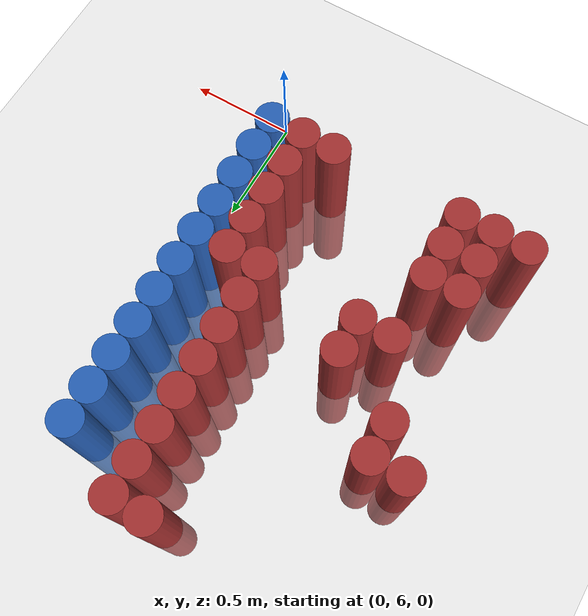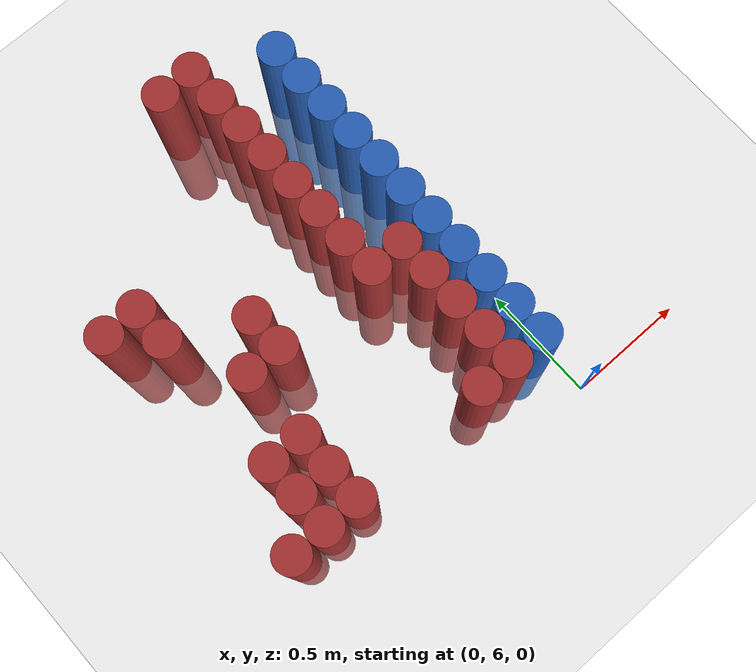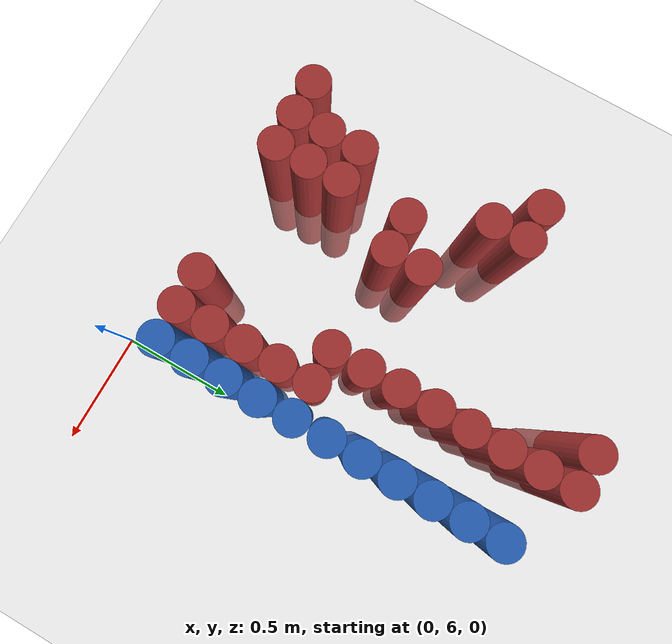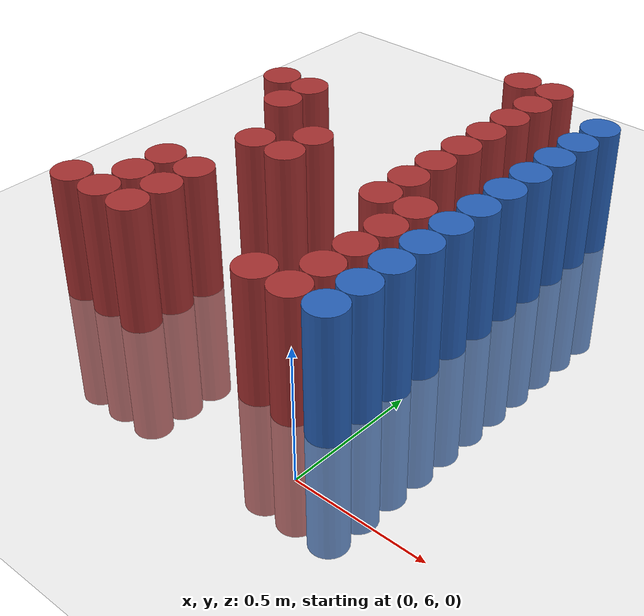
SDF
<sdf version="1.6">
 <world name="default">
  <model name="ground_plane">
   <static>1</static>
   <link name="link">
    <collision name="collision">
     <geometry><plane><normal>0 0 1</normal><size>100 100</size></plane></geometry>
     <surface><friction><ode><mu>100</mu><mu2>50</mu2></ode></friction></surface>
    </collision>
    <visual name="visual">
     <cast_shadows>0</cast_shadows>
     <geometry><plane><normal>0 0 1</normal><size>100 100</size></plane></geometry>
     <material>
      <script><uri>file://media/materials/scripts/gazebo.material</uri><name>Gazebo/Grey</name></script>
     </material>
    </visual>
   </link>
  </model>
  <model name="unit_cylinder_216">
   <static>1</static>
   <pose>-1.275000 6.225000 0.000000 0.000000 0.000000 0.000000</pose>
   <link name="link">
    <inertial>
     <mass>1</mass>
     <inertia><ixx>0.145833</ixx><ixy>0</ixy><ixz>0</ixz><iyy>0.145833</iyy><iyz>0</iyz><izz>0.125</izz></inertia>
    </inertial>
    <collision name="collision">
     <geometry><cylinder><radius>0.075000</radius><length>1</length></cylinder></geometry>
    </collision>
    <visual name="visual">
     <geometry><cylinder><radius>0.075000</radius><length>1</length></cylinder></geometry>
     <material>
      <ambient>0.648000 0.192000 0.192000 1</ambient>
      <diffuse>0.648000 0.192000 0.192000 1</diffuse>
     </material>
     <material>
      <script><name>Gazebo/Grey</name><uri>file://media/materials/scripts/gazebo.material</uri></script>
     </material>
    </visual>
    <sensor name="sensor_contact" type="contact"><contact><collision>collision</collision></contact></sensor>
   </link>
   <plugin filename="gz-sim-touchplugin-system" name="gz::sim::systems::TouchPlugin">
    <target>robot</target>
    <namespace>robot</namespace>
    <time>0.001</time>
    <enabled>true</enabled>
   </plugin>
  </model>
  <model name="unit_cylinder_217">
   <static>1</static>
   <pose>-1.275000 7.275000 0.000000 0.000000 0.000000 0.000000</pose>
   <link name="link">
    <inertial>
     <mass>1</mass>
     <inertia><ixx>0.145833</ixx><ixy>0</ixy><ixz>0</ixz><iyy>0.145833</iyy><iyz>0</iyz><izz>0.125</izz></inertia>
    </inertial>
    <collision name="collision">
     <geometry><cylinder><radius>0.075000</radius><length>1</length></cylinder></geometry>
    </collision>
    <visual name="visual">
     <geometry><cylinder><radius>0.075000</radius><length>1</length></cylinder></geometry>
     <material>
      <ambient>0.648000 0.192000 0.192000 1</ambient>
      <diffuse>0.648000 0.192000 0.192000 1</diffuse>
     </material>
     <material>
      <script><name>Gazebo/Grey</name><uri>file://media/materials/scripts/gazebo.material</uri></script>
     </material>
    </visual>
    <sensor name="sensor_contact" type="contact"><contact><collision>collision</collision></contact></sensor>
   </link>
   <plugin filename="gz-sim-touchplugin-system" name="gz::sim::systems::TouchPlugin">
    <target>robot</target>
    <namespace>robot</namespace>
    <time>0.001</time>
    <enabled>true</enabled>
   </plugin>
  </model>
  <model name="unit_cylinder_221">
   <static>1</static>
   <pose>-1.125000 6.225000 0.000000 0.000000 0.000000 0.000000</pose>
   <link name="link">
    <inertial>
     <mass>1</mass>
     <inertia><ixx>0.145833</ixx><ixy>0</ixy><ixz>0</ixz><iyy>0.145833</iyy><iyz>0</iyz><izz>0.125</izz></inertia>
    </inertial>
    <collision name="collision">
     <geometry><cylinder><radius>0.075000</radius><length>1</length></cylinder></geometry>
    </collision>
    <visual name="visual">
     <geometry><cylinder><radius>0.075000</radius><length>1</length></cylinder></geometry>
     <material>
      <ambient>0.648000 0.192000 0.192000 1</ambient>
      <diffuse>0.648000 0.192000 0.192000 1</diffuse>
     </material>
     <material>
      <script><name>Gazebo/Grey</name><uri>file://media/materials/scripts/gazebo.material</uri></script>
     </material>
    </visual>
    <sensor name="sensor_contact" type="contact"><contact><collision>collision</collision></contact></sensor>
   </link>
   <plugin filename="gz-sim-touchplugin-system" name="gz::sim::systems::TouchPlugin">
    <target>robot</target>
    <namespace>robot</namespace>
    <time>0.001</time>
    <enabled>true</enabled>
   </plugin>
  </model>
  <model name="unit_cylinder_222">
   <static>1</static>
   <pose>-1.125000 6.375000 0.000000 0.000000 0.000000 0.000000</pose>
   <link name="link">
    <inertial>
     <mass>1</mass>
     <inertia><ixx>0.145833</ixx><ixy>0</ixy><ixz>0</ixz><iyy>0.145833</iyy><iyz>0</iyz><izz>0.125</izz></inertia>
    </inertial>
    <collision name="collision">
     <geometry><cylinder><radius>0.075000</radius><length>1</length></cylinder></geometry>
    </collision>
    <visual name="visual">
     <geometry><cylinder><radius>0.075000</radius><length>1</length></cylinder></geometry>
     <material>
      <ambient>0.648000 0.192000 0.192000 1</ambient>
      <diffuse>0.648000 0.192000 0.192000 1</diffuse>
     </material>
     <material>
      <script><name>Gazebo/Grey</name><uri>file://media/materials/scripts/gazebo.material</uri></script>
     </material>
    </visual>
    <sensor name="sensor_contact" type="contact"><contact><collision>collision</collision></contact></sensor>
   </link>
   <plugin filename="gz-sim-touchplugin-system" name="gz::sim::systems::TouchPlugin">
    <target>robot</target>
    <namespace>robot</namespace>
    <time>0.001</time>
    <enabled>true</enabled>
   </plugin>
  </model>
  <model name="unit_cylinder_223">
   <static>1</static>
   <pose>-1.125000 6.525000 0.000000 0.000000 0.000000 0.000000</pose>
   <link name="link">
    <inertial>
     <mass>1</mass>
     <inertia><ixx>0.145833</ixx><ixy>0</ixy><ixz>0</ixz><iyy>0.145833</iyy><iyz>0</iyz><izz>0.125</izz></inertia>
    </inertial>
    <collision name="collision">
     <geometry><cylinder><radius>0.075000</radius><length>1</length></cylinder></geometry>
    </collision>
    <visual name="visual">
     <geometry><cylinder><radius>0.075000</radius><length>1</length></cylinder></geometry>
     <material>
      <ambient>0.648000 0.192000 0.192000 1</ambient>
      <diffuse>0.648000 0.192000 0.192000 1</diffuse>
     </material>
     <material>
      <script><name>Gazebo/Grey</name><uri>file://media/materials/scripts/gazebo.material</uri></script>
     </material>
    </visual>
    <sensor name="sensor_contact" type="contact"><contact><collision>collision</collision></contact></sensor>
   </link>
   <plugin filename="gz-sim-touchplugin-system" name="gz::sim::systems::TouchPlugin">
    <target>robot</target>
    <namespace>robot</namespace>
    <time>0.001</time>
    <enabled>true</enabled>
   </plugin>
  </model>
  <model name="unit_cylinder_224">
   <static>1</static>
   <pose>-1.125000 7.125000 0.000000 0.000000 0.000000 0.000000</pose>
   <link name="link">
    <inertial>
     <mass>1</mass>
     <inertia><ixx>0.145833</ixx><ixy>0</ixy><ixz>0</ixz><iyy>0.145833</iyy><iyz>0</iyz><izz>0.125</izz></inertia>
    </inertial>
    <collision name="collision">
     <geometry><cylinder><radius>0.075000</radius><length>1</length></cylinder></geometry>
    </collision>
    <visual name="visual">
     <geometry><cylinder><radius>0.075000</radius><length>1</length></cylinder></geometry>
     <material>
      <ambient>0.648000 0.192000 0.192000 1</ambient>
      <diffuse>0.648000 0.192000 0.192000 1</diffuse>
     </material>
     <material>
      <script><name>Gazebo/Grey</name><uri>file://media/materials/scripts/gazebo.material</uri></script>
     </material>
    </visual>
    <sensor name="sensor_contact" type="contact"><contact><collision>collision</collision></contact></sensor>
   </link>
   <plugin filename="gz-sim-touchplugin-system" name="gz::sim::systems::TouchPlugin">
    <target>robot</target>
    <namespace>robot</namespace>
    <time>0.001</time>
    <enabled>true</enabled>
   </plugin>
  </model>
  <model name="unit_cylinder_225">
   <static>1</static>
   <pose>-1.125000 7.275000 0.000000 0.000000 0.000000 0.000000</pose>
   <link name="link">
    <inertial>
     <mass>1</mass>
     <inertia><ixx>0.145833</ixx><ixy>0</ixy><ixz>0</ixz><iyy>0.145833</iyy><iyz>0</iyz><izz>0.125</izz></inertia>
    </inertial>
    <collision name="collision">
     <geometry><cylinder><radius>0.075000</radius><length>1</length></cylinder></geometry>
    </collision>
    <visual name="visual">
     <geometry><cylinder><radius>0.075000</radius><length>1</length></cylinder></geometry>
     <material>
      <ambient>0.648000 0.192000 0.192000 1</ambient>
      <diffuse>0.648000 0.192000 0.192000 1</diffuse>
     </material>
     <material>
      <script><name>Gazebo/Grey</name><uri>file://media/materials/scripts/gazebo.material</uri></script>
     </material>
    </visual>
    <sensor name="sensor_contact" type="contact"><contact><collision>collision</collision></contact></sensor>
   </link>
   <plugin filename="gz-sim-touchplugin-system" name="gz::sim::systems::TouchPlugin">
    <target>robot</target>
    <namespace>robot</namespace>
    <time>0.001</time>
    <enabled>true</enabled>
   </plugin>
  </model>
  <model name="unit_cylinder_229">
   <static>1</static>
   <pose>-0.975000 6.225000 0.000000 0.000000 0.000000 0.000000</pose>
   <link name="link">
    <inertial>
     <mass>1</mass>
     <inertia><ixx>0.145833</ixx><ixy>0</ixy><ixz>0</ixz><iyy>0.145833</iyy><iyz>0</iyz><izz>0.125</izz></inertia>
    </inertial>
    <collision name="collision">
     <geometry><cylinder><radius>0.075000</radius><length>1</length></cylinder></geometry>
    </collision>
    <visual name="visual">
     <geometry><cylinder><radius>0.075000</radius><length>1</length></cylinder></geometry>
     <material>
      <ambient>0.648000 0.192000 0.192000 1</ambient>
      <diffuse>0.648000 0.192000 0.192000 1</diffuse>
     </material>
     <material>
      <script><name>Gazebo/Grey</name><uri>file://media/materials/scripts/gazebo.material</uri></script>
     </material>
    </visual>
    <sensor name="sensor_contact" type="contact"><contact><collision>collision</collision></contact></sensor>
   </link>
   <plugin filename="gz-sim-touchplugin-system" name="gz::sim::systems::TouchPlugin">
    <target>robot</target>
    <namespace>robot</namespace>
    <time>0.001</time>
    <enabled>true</enabled>
   </plugin>
  </model>
  <model name="unit_cylinder_230">
   <static>1</static>
   <pose>-0.975000 6.375000 0.000000 0.000000 0.000000 0.000000</pose>
   <link name="link">
    <inertial>
     <mass>1</mass>
     <inertia><ixx>0.145833</ixx><ixy>0</ixy><ixz>0</ixz><iyy>0.145833</iyy><iyz>0</iyz><izz>0.125</izz></inertia>
    </inertial>
    <collision name="collision">
     <geometry><cylinder><radius>0.075000</radius><length>1</length></cylinder></geometry>
    </collision>
    <visual name="visual">
     <geometry><cylinder><radius>0.075000</radius><length>1</length></cylinder></geometry>
     <material>
      <ambient>0.648000 0.192000 0.192000 1</ambient>
      <diffuse>0.648000 0.192000 0.192000 1</diffuse>
     </material>
     <material>
      <script><name>Gazebo/Grey</name><uri>file://media/materials/scripts/gazebo.material</uri></script>
     </material>
    </visual>
    <sensor name="sensor_contact" type="contact"><contact><collision>collision</collision></contact></sensor>
   </link>
   <plugin filename="gz-sim-touchplugin-system" name="gz::sim::systems::TouchPlugin">
    <target>robot</target>
    <namespace>robot</namespace>
    <time>0.001</time>
    <enabled>true</enabled>
   </plugin>
  </model>
  <model name="unit_cylinder_231">
   <static>1</static>
   <pose>-0.975000 6.525000 0.000000 0.000000 0.000000 0.000000</pose>
   <link name="link">
    <inertial>
     <mass>1</mass>
     <inertia><ixx>0.145833</ixx><ixy>0</ixy><ixz>0</ixz><iyy>0.145833</iyy><iyz>0</iyz><izz>0.125</izz></inertia>
    </inertial>
    <collision name="collision">
     <geometry><cylinder><radius>0.075000</radius><length>1</length></cylinder></geometry>
    </collision>
    <visual name="visual">
     <geometry><cylinder><radius>0.075000</radius><length>1</length></cylinder></geometry>
     <material>
      <ambient>0.648000 0.192000 0.192000 1</ambient>
      <diffuse>0.648000 0.192000 0.192000 1</diffuse>
     </material>
     <material>
      <script><name>Gazebo/Grey</name><uri>file://media/materials/scripts/gazebo.material</uri></script>
     </material>
    </visual>
    <sensor name="sensor_contact" type="contact"><contact><collision>collision</collision></contact></sensor>
   </link>
   <plugin filename="gz-sim-touchplugin-system" name="gz::sim::systems::TouchPlugin">
    <target>robot</target>
    <namespace>robot</namespace>
    <time>0.001</time>
    <enabled>true</enabled>
   </plugin>
  </model>
  <model name="unit_cylinder_232">
   <static>1</static>
   <pose>-0.975000 6.825000 0.000000 0.000000 0.000000 0.000000</pose>
   <link name="link">
    <inertial>
     <mass>1</mass>
     <inertia><ixx>0.145833</ixx><ixy>0</ixy><ixz>0</ixz><iyy>0.145833</iyy><iyz>0</iyz><izz>0.125</izz></inertia>
    </inertial>
    <collision name="collision">
     <geometry><cylinder><radius>0.075000</radius><length>1</length></cylinder></geometry>
    </collision>
    <visual name="visual">
     <geometry><cylinder><radius>0.075000</radius><length>1</length></cylinder></geometry>
     <material>
      <ambient>0.648000 0.192000 0.192000 1</ambient>
      <diffuse>0.648000 0.192000 0.192000 1</diffuse>
     </material>
     <material>
      <script><name>Gazebo/Grey</name><uri>file://media/materials/scripts/gazebo.material</uri></script>
     </material>
    </visual>
    <sensor name="sensor_contact" type="contact"><contact><collision>collision</collision></contact></sensor>
   </link>
   <plugin filename="gz-sim-touchplugin-system" name="gz::sim::systems::TouchPlugin">
    <target>robot</target>
    <namespace>robot</namespace>
    <time>0.001</time>
    <enabled>true</enabled>
   </plugin>
  </model>
  <model name="unit_cylinder_236">
   <static>1</static>
   <pose>-0.825000 6.825000 0.000000 0.000000 0.000000 0.000000</pose>
   <link name="link">
    <inertial>
     <mass>1</mass>
     <inertia><ixx>0.145833</ixx><ixy>0</ixy><ixz>0</ixz><iyy>0.145833</iyy><iyz>0</iyz><izz>0.125</izz></inertia>
    </inertial>
    <collision name="collision">
     <geometry><cylinder><radius>0.075000</radius><length>1</length></cylinder></geometry>
    </collision>
    <visual name="visual">
     <geometry><cylinder><radius>0.075000</radius><length>1</length></cylinder></geometry>
     <material>
      <ambient>0.648000 0.192000 0.192000 1</ambient>
      <diffuse>0.648000 0.192000 0.192000 1</diffuse>
     </material>
     <material>
      <script><name>Gazebo/Grey</name><uri>file://media/materials/scripts/gazebo.material</uri></script>
     </material>
    </visual>
    <sensor name="sensor_contact" type="contact"><contact><collision>collision</collision></contact></sensor>
   </link>
   <plugin filename="gz-sim-touchplugin-system" name="gz::sim::systems::TouchPlugin">
    <target>robot</target>
    <namespace>robot</namespace>
    <time>0.001</time>
    <enabled>true</enabled>
   </plugin>
  </model>
  <model name="unit_cylinder_237">
   <static>1</static>
   <pose>-0.825000 6.975000 0.000000 0.000000 0.000000 0.000000</pose>
   <link name="link">
    <inertial>
     <mass>1</mass>
     <inertia><ixx>0.145833</ixx><ixy>0</ixy><ixz>0</ixz><iyy>0.145833</iyy><iyz>0</iyz><izz>0.125</izz></inertia>
    </inertial>
    <collision name="collision">
     <geometry><cylinder><radius>0.075000</radius><length>1</length></cylinder></geometry>
    </collision>
    <visual name="visual">
     <geometry><cylinder><radius>0.075000</radius><length>1</length></cylinder></geometry>
     <material>
      <ambient>0.648000 0.192000 0.192000 1</ambient>
      <diffuse>0.648000 0.192000 0.192000 1</diffuse>
     </material>
     <material>
      <script><name>Gazebo/Grey</name><uri>file://media/materials/scripts/gazebo.material</uri></script>
     </material>
    </visual>
    <sensor name="sensor_contact" type="contact"><contact><collision>collision</collision></contact></sensor>
   </link>
   <plugin filename="gz-sim-touchplugin-system" name="gz::sim::systems::TouchPlugin">
    <target>robot</target>
    <namespace>robot</namespace>
    <time>0.001</time>
    <enabled>true</enabled>
   </plugin>
  </model>
  <model name="unit_cylinder_250">
   <static>1</static>
   <pose>-0.525000 7.875000 0.000000 0.000000 0.000000 0.000000</pose>
   <link name="link">
    <inertial>
     <mass>1</mass>
     <inertia><ixx>0.145833</ixx><ixy>0</ixy><ixz>0</ixz><iyy>0.145833</iyy><iyz>0</iyz><izz>0.125</izz></inertia>
    </inertial>
    <collision name="collision">
     <geometry><cylinder><radius>0.075000</radius><length>1</length></cylinder></geometry>
    </collision>
    <visual name="visual">
     <geometry><cylinder><radius>0.075000</radius><length>1</length></cylinder></geometry>
     <material>
      <ambient>0.648000 0.192000 0.192000 1</ambient>
      <diffuse>0.648000 0.192000 0.192000 1</diffuse>
     </material>
     <material>
      <script><name>Gazebo/Grey</name><uri>file://media/materials/scripts/gazebo.material</uri></script>
     </material>
    </visual>
    <sensor name="sensor_contact" type="contact"><contact><collision>collision</collision></contact></sensor>
   </link>
   <plugin filename="gz-sim-touchplugin-system" name="gz::sim::systems::TouchPlugin">
    <target>robot</target>
    <namespace>robot</namespace>
    <time>0.001</time>
    <enabled>true</enabled>
   </plugin>
  </model>
  <model name="unit_cylinder_261">
   <static>1</static>
   <pose>-0.375000 6.225000 0.000000 0.000000 0.000000 0.000000</pose>
   <link name="link">
    <inertial>
     <mass>1</mass>
     <inertia><ixx>0.145833</ixx><ixy>0</ixy><ixz>0</ixz><iyy>0.145833</iyy><iyz>0</iyz><izz>0.125</izz></inertia>
    </inertial>
    <collision name="collision">
     <geometry><cylinder><radius>0.075000</radius><length>1</length></cylinder></geometry>
    </collision>
    <visual name="visual">
     <geometry><cylinder><radius>0.075000</radius><length>1</length></cylinder></geometry>
     <material>
      <ambient>0.648000 0.192000 0.192000 1</ambient>
      <diffuse>0.648000 0.192000 0.192000 1</diffuse>
     </material>
     <material>
      <script><name>Gazebo/Grey</name><uri>file://media/materials/scripts/gazebo.material</uri></script>
     </material>
    </visual>
    <sensor name="sensor_contact" type="contact"><contact><collision>collision</collision></contact></sensor>
   </link>
   <plugin filename="gz-sim-touchplugin-system" name="gz::sim::systems::TouchPlugin">
    <target>robot</target>
    <namespace>robot</namespace>
    <time>0.001</time>
    <enabled>true</enabled>
   </plugin>
  </model>
  <model name="unit_cylinder_262">
   <static>1</static>
   <pose>-0.375000 6.825000 0.000000 0.000000 0.000000 0.000000</pose>
   <link name="link">
    <inertial>
     <mass>1</mass>
     <inertia><ixx>0.145833</ixx><ixy>0</ixy><ixz>0</ixz><iyy>0.145833</iyy><iyz>0</iyz><izz>0.125</izz></inertia>
    </inertial>
    <collision name="collision">
     <geometry><cylinder><radius>0.075000</radius><length>1</length></cylinder></geometry>
    </collision>
    <visual name="visual">
     <geometry><cylinder><radius>0.075000</radius><length>1</length></cylinder></geometry>
     <material>
      <ambient>0.648000 0.192000 0.192000 1</ambient>
      <diffuse>0.648000 0.192000 0.192000 1</diffuse>
     </material>
     <material>
      <script><name>Gazebo/Grey</name><uri>file://media/materials/scripts/gazebo.material</uri></script>
     </material>
    </visual>
    <sensor name="sensor_contact" type="contact"><contact><collision>collision</collision></contact></sensor>
   </link>
   <plugin filename="gz-sim-touchplugin-system" name="gz::sim::systems::TouchPlugin">
    <target>robot</target>
    <namespace>robot</namespace>
    <time>0.001</time>
    <enabled>true</enabled>
   </plugin>
  </model>
  <model name="unit_cylinder_263">
   <static>1</static>
   <pose>-0.375000 6.975000 0.000000 0.000000 0.000000 0.000000</pose>
   <link name="link">
    <inertial>
     <mass>1</mass>
     <inertia><ixx>0.145833</ixx><ixy>0</ixy><ixz>0</ixz><iyy>0.145833</iyy><iyz>0</iyz><izz>0.125</izz></inertia>
    </inertial>
    <collision name="collision">
     <geometry><cylinder><radius>0.075000</radius><length>1</length></cylinder></geometry>
    </collision>
    <visual name="visual">
     <geometry><cylinder><radius>0.075000</radius><length>1</length></cylinder></geometry>
     <material>
      <ambient>0.648000 0.192000 0.192000 1</ambient>
      <diffuse>0.648000 0.192000 0.192000 1</diffuse>
     </material>
     <material>
      <script><name>Gazebo/Grey</name><uri>file://media/materials/scripts/gazebo.material</uri></script>
     </material>
    </visual>
    <sensor name="sensor_contact" type="contact"><contact><collision>collision</collision></contact></sensor>
   </link>
   <plugin filename="gz-sim-touchplugin-system" name="gz::sim::systems::TouchPlugin">
    <target>robot</target>
    <namespace>robot</namespace>
    <time>0.001</time>
    <enabled>true</enabled>
   </plugin>
  </model>
  <model name="unit_cylinder_264">
   <static>1</static>
   <pose>-0.375000 7.125000 0.000000 0.000000 0.000000 0.000000</pose>
   <link name="link">
    <inertial>
     <mass>1</mass>
     <inertia><ixx>0.145833</ixx><ixy>0</ixy><ixz>0</ixz><iyy>0.145833</iyy><iyz>0</iyz><izz>0.125</izz></inertia>
    </inertial>
    <collision name="collision">
     <geometry><cylinder><radius>0.075000</radius><length>1</length></cylinder></geometry>
    </collision>
    <visual name="visual">
     <geometry><cylinder><radius>0.075000</radius><length>1</length></cylinder></geometry>
     <material>
      <ambient>0.648000 0.192000 0.192000 1</ambient>
      <diffuse>0.648000 0.192000 0.192000 1</diffuse>
     </material>
     <material>
      <script><name>Gazebo/Grey</name><uri>file://media/materials/scripts/gazebo.material</uri></script>
     </material>
    </visual>
    <sensor name="sensor_contact" type="contact"><contact><collision>collision</collision></contact></sensor>
   </link>
   <plugin filename="gz-sim-touchplugin-system" name="gz::sim::systems::TouchPlugin">
    <target>robot</target>
    <namespace>robot</namespace>
    <time>0.001</time>
    <enabled>true</enabled>
   </plugin>
  </model>
  <model name="unit_cylinder_265">
   <static>1</static>
   <pose>-0.375000 7.275000 0.000000 0.000000 0.000000 0.000000</pose>
   <link name="link">
    <inertial>
     <mass>1</mass>
     <inertia><ixx>0.145833</ixx><ixy>0</ixy><ixz>0</ixz><iyy>0.145833</iyy><iyz>0</iyz><izz>0.125</izz></inertia>
    </inertial>
    <collision name="collision">
     <geometry><cylinder><radius>0.075000</radius><length>1</length></cylinder></geometry>
    </collision>
    <visual name="visual">
     <geometry><cylinder><radius>0.075000</radius><length>1</length></cylinder></geometry>
     <material>
      <ambient>0.648000 0.192000 0.192000 1</ambient>
      <diffuse>0.648000 0.192000 0.192000 1</diffuse>
     </material>
     <material>
      <script><name>Gazebo/Grey</name><uri>file://media/materials/scripts/gazebo.material</uri></script>
     </material>
    </visual>
    <sensor name="sensor_contact" type="contact"><contact><collision>collision</collision></contact></sensor>
   </link>
   <plugin filename="gz-sim-touchplugin-system" name="gz::sim::systems::TouchPlugin">
    <target>robot</target>
    <namespace>robot</namespace>
    <time>0.001</time>
    <enabled>true</enabled>
   </plugin>
  </model>
  <model name="unit_cylinder_266">
   <static>1</static>
   <pose>-0.375000 7.425000 0.000000 0.000000 0.000000 0.000000</pose>
   <link name="link">
    <inertial>
     <mass>1</mass>
     <inertia><ixx>0.145833</ixx><ixy>0</ixy><ixz>0</ixz><iyy>0.145833</iyy><iyz>0</iyz><izz>0.125</izz></inertia>
    </inertial>
    <collision name="collision">
     <geometry><cylinder><radius>0.075000</radius><length>1</length></cylinder></geometry>
    </collision>
    <visual name="visual">
     <geometry><cylinder><radius>0.075000</radius><length>1</length></cylinder></geometry>
     <material>
      <ambient>0.648000 0.192000 0.192000 1</ambient>
      <diffuse>0.648000 0.192000 0.192000 1</diffuse>
     </material>
     <material>
      <script><name>Gazebo/Grey</name><uri>file://media/materials/scripts/gazebo.material</uri></script>
     </material>
    </visual>
    <sensor name="sensor_contact" type="contact"><contact><collision>collision</collision></contact></sensor>
   </link>
   <plugin filename="gz-sim-touchplugin-system" name="gz::sim::systems::TouchPlugin">
    <target>robot</target>
    <namespace>robot</namespace>
    <time>0.001</time>
    <enabled>true</enabled>
   </plugin>
  </model>
  <model name="unit_cylinder_267">
   <static>1</static>
   <pose>-0.375000 7.575000 0.000000 0.000000 0.000000 0.000000</pose>
   <link name="link">
    <inertial>
     <mass>1</mass>
     <inertia><ixx>0.145833</ixx><ixy>0</ixy><ixz>0</ixz><iyy>0.145833</iyy><iyz>0</iyz><izz>0.125</izz></inertia>
    </inertial>
    <collision name="collision">
     <geometry><cylinder><radius>0.075000</radius><length>1</length></cylinder></geometry>
    </collision>
    <visual name="visual">
     <geometry><cylinder><radius>0.075000</radius><length>1</length></cylinder></geometry>
     <material>
      <ambient>0.648000 0.192000 0.192000 1</ambient>
      <diffuse>0.648000 0.192000 0.192000 1</diffuse>
     </material>
     <material>
      <script><name>Gazebo/Grey</name><uri>file://media/materials/scripts/gazebo.material</uri></script>
     </material>
    </visual>
    <sensor name="sensor_contact" type="contact"><contact><collision>collision</collision></contact></sensor>
   </link>
   <plugin filename="gz-sim-touchplugin-system" name="gz::sim::systems::TouchPlugin">
    <target>robot</target>
    <namespace>robot</namespace>
    <time>0.001</time>
    <enabled>true</enabled>
   </plugin>
  </model>
  <model name="unit_cylinder_268">
   <static>1</static>
   <pose>-0.375000 7.725000 0.000000 0.000000 0.000000 0.000000</pose>
   <link name="link">
    <inertial>
     <mass>1</mass>
     <inertia><ixx>0.145833</ixx><ixy>0</ixy><ixz>0</ixz><iyy>0.145833</iyy><iyz>0</iyz><izz>0.125</izz></inertia>
    </inertial>
    <collision name="collision">
     <geometry><cylinder><radius>0.075000</radius><length>1</length></cylinder></geometry>
    </collision>
    <visual name="visual">
     <geometry><cylinder><radius>0.075000</radius><length>1</length></cylinder></geometry>
     <material>
      <ambient>0.648000 0.192000 0.192000 1</ambient>
      <diffuse>0.648000 0.192000 0.192000 1</diffuse>
     </material>
     <material>
      <script><name>Gazebo/Grey</name><uri>file://media/materials/scripts/gazebo.material</uri></script>
     </material>
    </visual>
    <sensor name="sensor_contact" type="contact"><contact><collision>collision</collision></contact></sensor>
   </link>
   <plugin filename="gz-sim-touchplugin-system" name="gz::sim::systems::TouchPlugin">
    <target>robot</target>
    <namespace>robot</namespace>
    <time>0.001</time>
    <enabled>true</enabled>
   </plugin>
  </model>
  <model name="unit_cylinder_269">
   <static>1</static>
   <pose>-0.375000 7.875000 0.000000 0.000000 0.000000 0.000000</pose>
   <link name="link">
    <inertial>
     <mass>1</mass>
     <inertia><ixx>0.145833</ixx><ixy>0</ixy><ixz>0</ixz><iyy>0.145833</iyy><iyz>0</iyz><izz>0.125</izz></inertia>
    </inertial>
    <collision name="collision">
     <geometry><cylinder><radius>0.075000</radius><length>1</length></cylinder></geometry>
    </collision>
    <visual name="visual">
     <geometry><cylinder><radius>0.075000</radius><length>1</length></cylinder></geometry>
     <material>
      <ambient>0.648000 0.192000 0.192000 1</ambient>
      <diffuse>0.648000 0.192000 0.192000 1</diffuse>
     </material>
     <material>
      <script><name>Gazebo/Grey</name><uri>file://media/materials/scripts/gazebo.material</uri></script>
     </material>
    </visual>
    <sensor name="sensor_contact" type="contact"><contact><collision>collision</collision></contact></sensor>
   </link>
   <plugin filename="gz-sim-touchplugin-system" name="gz::sim::systems::TouchPlugin">
    <target>robot</target>
    <namespace>robot</namespace>
    <time>0.001</time>
    <enabled>true</enabled>
   </plugin>
  </model>
  <model name="unit_cylinder_274">
   <static>1</static>
   <pose>-0.225000 6.225000 0.000000 0.000000 0.000000 0.000000</pose>
   <link name="link">
    <inertial>
     <mass>1</mass>
     <inertia><ixx>0.145833</ixx><ixy>0</ixy><ixz>0</ixz><iyy>0.145833</iyy><iyz>0</iyz><izz>0.125</izz></inertia>
    </inertial>
    <collision name="collision">
     <geometry><cylinder><radius>0.075000</radius><length>1</length></cylinder></geometry>
    </collision>
    <visual name="visual">
     <geometry><cylinder><radius>0.075000</radius><length>1</length></cylinder></geometry>
     <material>
      <ambient>0.648000 0.192000 0.192000 1</ambient>
      <diffuse>0.648000 0.192000 0.192000 1</diffuse>
     </material>
     <material>
      <script><name>Gazebo/Grey</name><uri>file://media/materials/scripts/gazebo.material</uri></script>
     </material>
    </visual>
    <sensor name="sensor_contact" type="contact"><contact><collision>collision</collision></contact></sensor>
   </link>
   <plugin filename="gz-sim-touchplugin-system" name="gz::sim::systems::TouchPlugin">
    <target>robot</target>
    <namespace>robot</namespace>
    <time>0.001</time>
    <enabled>true</enabled>
   </plugin>
  </model>
  <model name="unit_cylinder_275">
   <static>1</static>
   <pose>-0.225000 6.375000 0.000000 0.000000 0.000000 0.000000</pose>
   <link name="link">
    <inertial>
     <mass>1</mass>
     <inertia><ixx>0.145833</ixx><ixy>0</ixy><ixz>0</ixz><iyy>0.145833</iyy><iyz>0</iyz><izz>0.125</izz></inertia>
    </inertial>
    <collision name="collision">
     <geometry><cylinder><radius>0.075000</radius><length>1</length></cylinder></geometry>
    </collision>
    <visual name="visual">
     <geometry><cylinder><radius>0.075000</radius><length>1</length></cylinder></geometry>
     <material>
      <ambient>0.648000 0.192000 0.192000 1</ambient>
      <diffuse>0.648000 0.192000 0.192000 1</diffuse>
     </material>
     <material>
      <script><name>Gazebo/Grey</name><uri>file://media/materials/scripts/gazebo.material</uri></script>
     </material>
    </visual>
    <sensor name="sensor_contact" type="contact"><contact><collision>collision</collision></contact></sensor>
   </link>
   <plugin filename="gz-sim-touchplugin-system" name="gz::sim::systems::TouchPlugin">
    <target>robot</target>
    <namespace>robot</namespace>
    <time>0.001</time>
    <enabled>true</enabled>
   </plugin>
  </model>
  <model name="unit_cylinder_276">
   <static>1</static>
   <pose>-0.225000 6.525000 0.000000 0.000000 0.000000 0.000000</pose>
   <link name="link">
    <inertial>
     <mass>1</mass>
     <inertia><ixx>0.145833</ixx><ixy>0</ixy><ixz>0</ixz><iyy>0.145833</iyy><iyz>0</iyz><izz>0.125</izz></inertia>
    </inertial>
    <collision name="collision">
     <geometry><cylinder><radius>0.075000</radius><length>1</length></cylinder></geometry>
    </collision>
    <visual name="visual">
     <geometry><cylinder><radius>0.075000</radius><length>1</length></cylinder></geometry>
     <material>
      <ambient>0.648000 0.192000 0.192000 1</ambient>
      <diffuse>0.648000 0.192000 0.192000 1</diffuse>
     </material>
     <material>
      <script><name>Gazebo/Grey</name><uri>file://media/materials/scripts/gazebo.material</uri></script>
     </material>
    </visual>
    <sensor name="sensor_contact" type="contact"><contact><collision>collision</collision></contact></sensor>
   </link>
   <plugin filename="gz-sim-touchplugin-system" name="gz::sim::systems::TouchPlugin">
    <target>robot</target>
    <namespace>robot</namespace>
    <time>0.001</time>
    <enabled>true</enabled>
   </plugin>
  </model>
  <model name="unit_cylinder_277">
   <static>1</static>
   <pose>-0.225000 6.675000 0.000000 0.000000 0.000000 0.000000</pose>
   <link name="link">
    <inertial>
     <mass>1</mass>
     <inertia><ixx>0.145833</ixx><ixy>0</ixy><ixz>0</ixz><iyy>0.145833</iyy><iyz>0</iyz><izz>0.125</izz></inertia>
    </inertial>
    <collision name="collision">
     <geometry><cylinder><radius>0.075000</radius><length>1</length></cylinder></geometry>
    </collision>
    <visual name="visual">
     <geometry><cylinder><radius>0.075000</radius><length>1</length></cylinder></geometry>
     <material>
      <ambient>0.648000 0.192000 0.192000 1</ambient>
      <diffuse>0.648000 0.192000 0.192000 1</diffuse>
     </material>
     <material>
      <script><name>Gazebo/Grey</name><uri>file://media/materials/scripts/gazebo.material</uri></script>
     </material>
    </visual>
    <sensor name="sensor_contact" type="contact"><contact><collision>collision</collision></contact></sensor>
   </link>
   <plugin filename="gz-sim-touchplugin-system" name="gz::sim::systems::TouchPlugin">
    <target>robot</target>
    <namespace>robot</namespace>
    <time>0.001</time>
    <enabled>true</enabled>
   </plugin>
  </model>
  <model name="unit_cylinder_278">
   <static>1</static>
   <pose>-0.225000 6.825000 0.000000 0.000000 0.000000 0.000000</pose>
   <link name="link">
    <inertial>
     <mass>1</mass>
     <inertia><ixx>0.145833</ixx><ixy>0</ixy><ixz>0</ixz><iyy>0.145833</iyy><iyz>0</iyz><izz>0.125</izz></inertia>
    </inertial>
    <collision name="collision">
     <geometry><cylinder><radius>0.075000</radius><length>1</length></cylinder></geometry>
    </collision>
    <visual name="visual">
     <geometry><cylinder><radius>0.075000</radius><length>1</length></cylinder></geometry>
     <material>
      <ambient>0.648000 0.192000 0.192000 1</ambient>
      <diffuse>0.648000 0.192000 0.192000 1</diffuse>
     </material>
     <material>
      <script><name>Gazebo/Grey</name><uri>file://media/materials/scripts/gazebo.material</uri></script>
     </material>
    </visual>
    <sensor name="sensor_contact" type="contact"><contact><collision>collision</collision></contact></sensor>
   </link>
   <plugin filename="gz-sim-touchplugin-system" name="gz::sim::systems::TouchPlugin">
    <target>robot</target>
    <namespace>robot</namespace>
    <time>0.001</time>
    <enabled>true</enabled>
   </plugin>
  </model>
  <model name="unit_cylinder_287">
   <static>1</static>
   <pose>-0.075000 6.225000 0.000000 0.000000 0.000000 0.000000</pose>
   <link name="link">
    <inertial>
     <mass>1</mass>
     <inertia><ixx>0.145833</ixx><ixy>0</ixy><ixz>0</ixz><iyy>0.145833</iyy><iyz>0</iyz><izz>0.125</izz></inertia>
    </inertial>
    <collision name="collision">
     <geometry><cylinder><radius>0.075000</radius><length>1</length></cylinder></geometry>
    </collision>
    <visual name="visual">
     <geometry><cylinder><radius>0.075000</radius><length>1</length></cylinder></geometry>
     <material>
      <ambient>0.152000 0.379000 0.720000 1</ambient>
      <diffuse>0.152000 0.379000 0.720000 1</diffuse>
     </material>
     <material>
      <script><name>Gazebo/Grey</name><uri>file://media/materials/scripts/gazebo.material</uri></script>
     </material>
    </visual>
    <sensor name="sensor_contact" type="contact"><contact><collision>collision</collision></contact></sensor>
   </link>
   <plugin filename="gz-sim-touchplugin-system" name="gz::sim::systems::TouchPlugin">
    <target>robot</target>
    <namespace>robot</namespace>
    <time>0.001</time>
    <enabled>true</enabled>
   </plugin>
  </model>
  <model name="unit_cylinder_288">
   <static>1</static>
   <pose>-0.075000 6.375000 0.000000 0.000000 0.000000 0.000000</pose>
   <link name="link">
    <inertial>
     <mass>1</mass>
     <inertia><ixx>0.145833</ixx><ixy>0</ixy><ixz>0</ixz><iyy>0.145833</iyy><iyz>0</iyz><izz>0.125</izz></inertia>
    </inertial>
    <collision name="collision">
     <geometry><cylinder><radius>0.075000</radius><length>1</length></cylinder></geometry>
    </collision>
    <visual name="visual">
     <geometry><cylinder><radius>0.075000</radius><length>1</length></cylinder></geometry>
     <material>
      <ambient>0.152000 0.379000 0.720000 1</ambient>
      <diffuse>0.152000 0.379000 0.720000 1</diffuse>
     </material>
     <material>
      <script><name>Gazebo/Grey</name><uri>file://media/materials/scripts/gazebo.material</uri></script>
     </material>
    </visual>
    <sensor name="sensor_contact" type="contact"><contact><collision>collision</collision></contact></sensor>
   </link>
   <plugin filename="gz-sim-touchplugin-system" name="gz::sim::systems::TouchPlugin">
    <target>robot</target>
    <namespace>robot</namespace>
    <time>0.001</time>
    <enabled>true</enabled>
   </plugin>
  </model>
  <model name="unit_cylinder_289">
   <static>1</static>
   <pose>-0.075000 6.525000 0.000000 0.000000 0.000000 0.000000</pose>
   <link name="link">
    <inertial>
     <mass>1</mass>
     <inertia><ixx>0.145833</ixx><ixy>0</ixy><ixz>0</ixz><iyy>0.145833</iyy><iyz>0</iyz><izz>0.125</izz></inertia>
    </inertial>
    <collision name="collision">
     <geometry><cylinder><radius>0.075000</radius><length>1</length></cylinder></geometry>
    </collision>
    <visual name="visual">
     <geometry><cylinder><radius>0.075000</radius><length>1</length></cylinder></geometry>
     <material>
      <ambient>0.152000 0.379000 0.720000 1</ambient>
      <diffuse>0.152000 0.379000 0.720000 1</diffuse>
     </material>
     <material>
      <script><name>Gazebo/Grey</name><uri>file://media/materials/scripts/gazebo.material</uri></script>
     </material>
    </visual>
    <sensor name="sensor_contact" type="contact"><contact><collision>collision</collision></contact></sensor>
   </link>
   <plugin filename="gz-sim-touchplugin-system" name="gz::sim::systems::TouchPlugin">
    <target>robot</target>
    <namespace>robot</namespace>
    <time>0.001</time>
    <enabled>true</enabled>
   </plugin>
  </model>
  <model name="unit_cylinder_290">
   <static>1</static>
   <pose>-0.075000 6.675000 0.000000 0.000000 0.000000 0.000000</pose>
   <link name="link">
    <inertial>
     <mass>1</mass>
     <inertia><ixx>0.145833</ixx><ixy>0</ixy><ixz>0</ixz><iyy>0.145833</iyy><iyz>0</iyz><izz>0.125</izz></inertia>
    </inertial>
    <collision name="collision">
     <geometry><cylinder><radius>0.075000</radius><length>1</length></cylinder></geometry>
    </collision>
    <visual name="visual">
     <geometry><cylinder><radius>0.075000</radius><length>1</length></cylinder></geometry>
     <material>
      <ambient>0.152000 0.379000 0.720000 1</ambient>
      <diffuse>0.152000 0.379000 0.720000 1</diffuse>
     </material>
     <material>
      <script><name>Gazebo/Grey</name><uri>file://media/materials/scripts/gazebo.material</uri></script>
     </material>
    </visual>
    <sensor name="sensor_contact" type="contact"><contact><collision>collision</collision></contact></sensor>
   </link>
   <plugin filename="gz-sim-touchplugin-system" name="gz::sim::systems::TouchPlugin">
    <target>robot</target>
    <namespace>robot</namespace>
    <time>0.001</time>
    <enabled>true</enabled>
   </plugin>
  </model>
  <model name="unit_cylinder_291">
   <static>1</static>
   <pose>-0.075000 6.825000 0.000000 0.000000 0.000000 0.000000</pose>
   <link name="link">
    <inertial>
     <mass>1</mass>
     <inertia><ixx>0.145833</ixx><ixy>0</ixy><ixz>0</ixz><iyy>0.145833</iyy><iyz>0</iyz><izz>0.125</izz></inertia>
    </inertial>
    <collision name="collision">
     <geometry><cylinder><radius>0.075000</radius><length>1</length></cylinder></geometry>
    </collision>
    <visual name="visual">
     <geometry><cylinder><radius>0.075000</radius><length>1</length></cylinder></geometry>
     <material>
      <ambient>0.152000 0.379000 0.720000 1</ambient>
      <diffuse>0.152000 0.379000 0.720000 1</diffuse>
     </material>
     <material>
      <script><name>Gazebo/Grey</name><uri>file://media/materials/scripts/gazebo.material</uri></script>
     </material>
    </visual>
    <sensor name="sensor_contact" type="contact"><contact><collision>collision</collision></contact></sensor>
   </link>
   <plugin filename="gz-sim-touchplugin-system" name="gz::sim::systems::TouchPlugin">
    <target>robot</target>
    <namespace>robot</namespace>
    <time>0.001</time>
    <enabled>true</enabled>
   </plugin>
  </model>
  <model name="unit_cylinder_292">
   <static>1</static>
   <pose>-0.075000 6.975000 0.000000 0.000000 0.000000 0.000000</pose>
   <link name="link">
    <inertial>
     <mass>1</mass>
     <inertia><ixx>0.145833</ixx><ixy>0</ixy><ixz>0</ixz><iyy>0.145833</iyy><iyz>0</iyz><izz>0.125</izz></inertia>
    </inertial>
    <collision name="collision">
     <geometry><cylinder><radius>0.075000</radius><length>1</length></cylinder></geometry>
    </collision>
    <visual name="visual">
     <geometry><cylinder><radius>0.075000</radius><length>1</length></cylinder></geometry>
     <material>
      <ambient>0.152000 0.379000 0.720000 1</ambient>
      <diffuse>0.152000 0.379000 0.720000 1</diffuse>
     </material>
     <material>
      <script><name>Gazebo/Grey</name><uri>file://media/materials/scripts/gazebo.material</uri></script>
     </material>
    </visual>
    <sensor name="sensor_contact" type="contact"><contact><collision>collision</collision></contact></sensor>
   </link>
   <plugin filename="gz-sim-touchplugin-system" name="gz::sim::systems::TouchPlugin">
    <target>robot</target>
    <namespace>robot</namespace>
    <time>0.001</time>
    <enabled>true</enabled>
   </plugin>
  </model>
  <model name="unit_cylinder_293">
   <static>1</static>
   <pose>-0.075000 7.125000 0.000000 0.000000 0.000000 0.000000</pose>
   <link name="link">
    <inertial>
     <mass>1</mass>
     <inertia><ixx>0.145833</ixx><ixy>0</ixy><ixz>0</ixz><iyy>0.145833</iyy><iyz>0</iyz><izz>0.125</izz></inertia>
    </inertial>
    <collision name="collision">
     <geometry><cylinder><radius>0.075000</radius><length>1</length></cylinder></geometry>
    </collision>
    <visual name="visual">
     <geometry><cylinder><radius>0.075000</radius><length>1</length></cylinder></geometry>
     <material>
      <ambient>0.152000 0.379000 0.720000 1</ambient>
      <diffuse>0.152000 0.379000 0.720000 1</diffuse>
     </material>
     <material>
      <script><name>Gazebo/Grey</name><uri>file://media/materials/scripts/gazebo.material</uri></script>
     </material>
    </visual>
    <sensor name="sensor_contact" type="contact"><contact><collision>collision</collision></contact></sensor>
   </link>
   <plugin filename="gz-sim-touchplugin-system" name="gz::sim::systems::TouchPlugin">
    <target>robot</target>
    <namespace>robot</namespace>
    <time>0.001</time>
    <enabled>true</enabled>
   </plugin>
  </model>
  <model name="unit_cylinder_294">
   <static>1</static>
   <pose>-0.075000 7.275000 0.000000 0.000000 0.000000 0.000000</pose>
   <link name="link">
    <inertial>
     <mass>1</mass>
     <inertia><ixx>0.145833</ixx><ixy>0</ixy><ixz>0</ixz><iyy>0.145833</iyy><iyz>0</iyz><izz>0.125</izz></inertia>
    </inertial>
    <collision name="collision">
     <geometry><cylinder><radius>0.075000</radius><length>1</length></cylinder></geometry>
    </collision>
    <visual name="visual">
     <geometry><cylinder><radius>0.075000</radius><length>1</length></cylinder></geometry>
     <material>
      <ambient>0.152000 0.379000 0.720000 1</ambient>
      <diffuse>0.152000 0.379000 0.720000 1</diffuse>
     </material>
     <material>
      <script><name>Gazebo/Grey</name><uri>file://media/materials/scripts/gazebo.material</uri></script>
     </material>
    </visual>
    <sensor name="sensor_contact" type="contact"><contact><collision>collision</collision></contact></sensor>
   </link>
   <plugin filename="gz-sim-touchplugin-system" name="gz::sim::systems::TouchPlugin">
    <target>robot</target>
    <namespace>robot</namespace>
    <time>0.001</time>
    <enabled>true</enabled>
   </plugin>
  </model>
  <model name="unit_cylinder_295">
   <static>1</static>
   <pose>-0.075000 7.425000 0.000000 0.000000 0.000000 0.000000</pose>
   <link name="link">
    <inertial>
     <mass>1</mass>
     <inertia><ixx>0.145833</ixx><ixy>0</ixy><ixz>0</ixz><iyy>0.145833</iyy><iyz>0</iyz><izz>0.125</izz></inertia>
    </inertial>
    <collision name="collision">
     <geometry><cylinder><radius>0.075000</radius><length>1</length></cylinder></geometry>
    </collision>
    <visual name="visual">
     <geometry><cylinder><radius>0.075000</radius><length>1</length></cylinder></geometry>
     <material>
      <ambient>0.152000 0.379000 0.720000 1</ambient>
      <diffuse>0.152000 0.379000 0.720000 1</diffuse>
     </material>
     <material>
      <script><name>Gazebo/Grey</name><uri>file://media/materials/scripts/gazebo.material</uri></script>
     </material>
    </visual>
    <sensor name="sensor_contact" type="contact"><contact><collision>collision</collision></contact></sensor>
   </link>
   <plugin filename="gz-sim-touchplugin-system" name="gz::sim::systems::TouchPlugin">
    <target>robot</target>
    <namespace>robot</namespace>
    <time>0.001</time>
    <enabled>true</enabled>
   </plugin>
  </model>
  <model name="unit_cylinder_296">
   <static>1</static>
   <pose>-0.075000 7.575000 0.000000 0.000000 0.000000 0.000000</pose>
   <link name="link">
    <inertial>
     <mass>1</mass>
     <inertia><ixx>0.145833</ixx><ixy>0</ixy><ixz>0</ixz><iyy>0.145833</iyy><iyz>0</iyz><izz>0.125</izz></inertia>
    </inertial>
    <collision name="collision">
     <geometry><cylinder><radius>0.075000</radius><length>1</length></cylinder></geometry>
    </collision>
    <visual name="visual">
     <geometry><cylinder><radius>0.075000</radius><length>1</length></cylinder></geometry>
     <material>
      <ambient>0.152000 0.379000 0.720000 1</ambient>
      <diffuse>0.152000 0.379000 0.720000 1</diffuse>
     </material>
     <material>
      <script><name>Gazebo/Grey</name><uri>file://media/materials/scripts/gazebo.material</uri></script>
     </material>
    </visual>
    <sensor name="sensor_contact" type="contact"><contact><collision>collision</collision></contact></sensor>
   </link>
   <plugin filename="gz-sim-touchplugin-system" name="gz::sim::systems::TouchPlugin">
    <target>robot</target>
    <namespace>robot</namespace>
    <time>0.001</time>
    <enabled>true</enabled>
   </plugin>
  </model>
  <model name="unit_cylinder_297">
   <static>1</static>
   <pose>-0.075000 7.725000 0.000000 0.000000 0.000000 0.000000</pose>
   <link name="link">
    <inertial>
     <mass>1</mass>
     <inertia><ixx>0.145833</ixx><ixy>0</ixy><ixz>0</ixz><iyy>0.145833</iyy><iyz>0</iyz><izz>0.125</izz></inertia>
    </inertial>
    <collision name="collision">
     <geometry><cylinder><radius>0.075000</radius><length>1</length></cylinder></geometry>
    </collision>
    <visual name="visual">
     <geometry><cylinder><radius>0.075000</radius><length>1</length></cylinder></geometry>
     <material>
      <ambient>0.152000 0.379000 0.720000 1</ambient>
      <diffuse>0.152000 0.379000 0.720000 1</diffuse>
     </material>
     <material>
      <script><name>Gazebo/Grey</name><uri>file://media/materials/scripts/gazebo.material</uri></script>
     </material>
    </visual>
    <sensor name="sensor_contact" type="contact"><contact><collision>collision</collision></contact></sensor>
   </link>
   <plugin filename="gz-sim-touchplugin-system" name="gz::sim::systems::TouchPlugin">
    <target>robot</target>
    <namespace>robot</namespace>
    <time>0.001</time>
    <enabled>true</enabled>
   </plugin>
  </model>
 </world>
</sdf>
